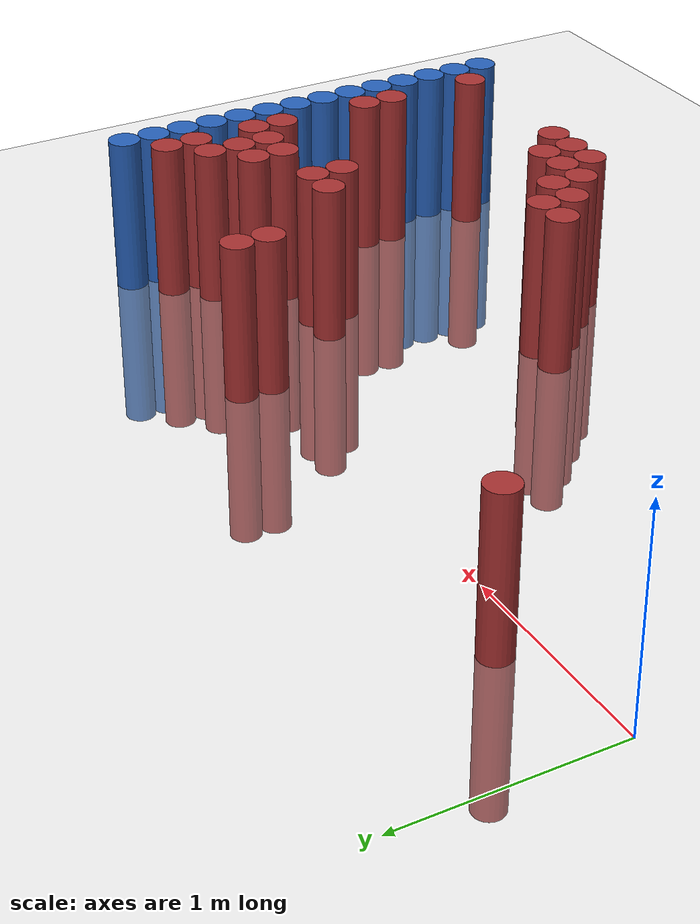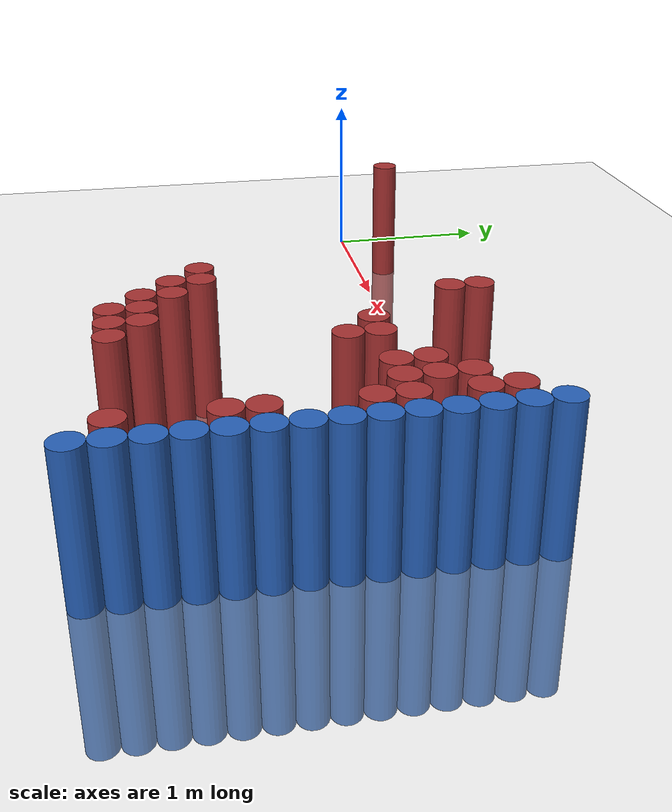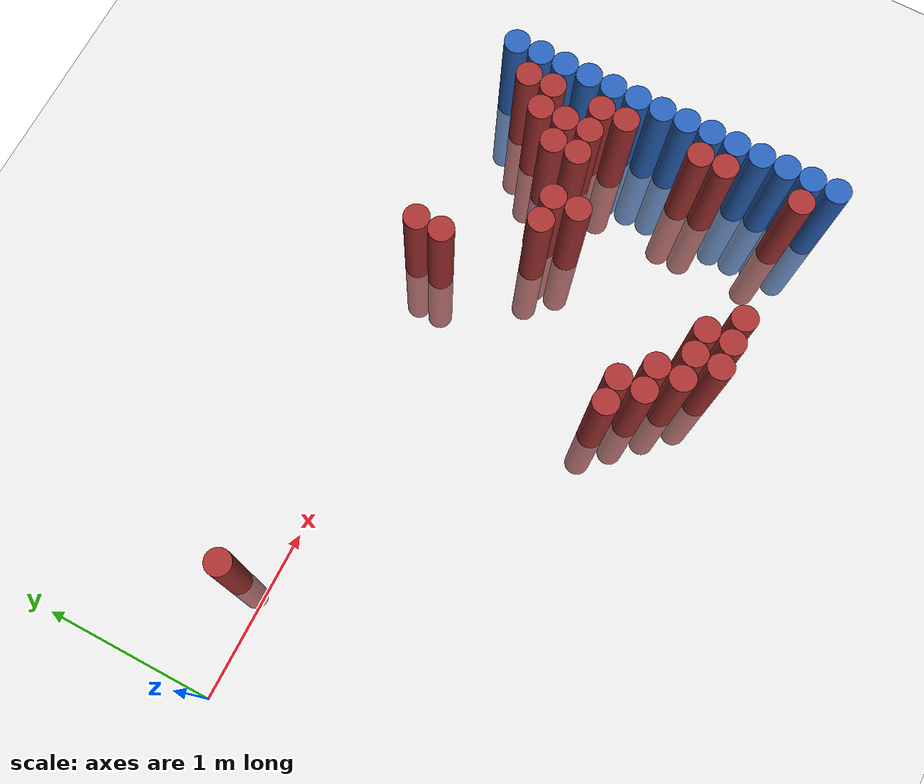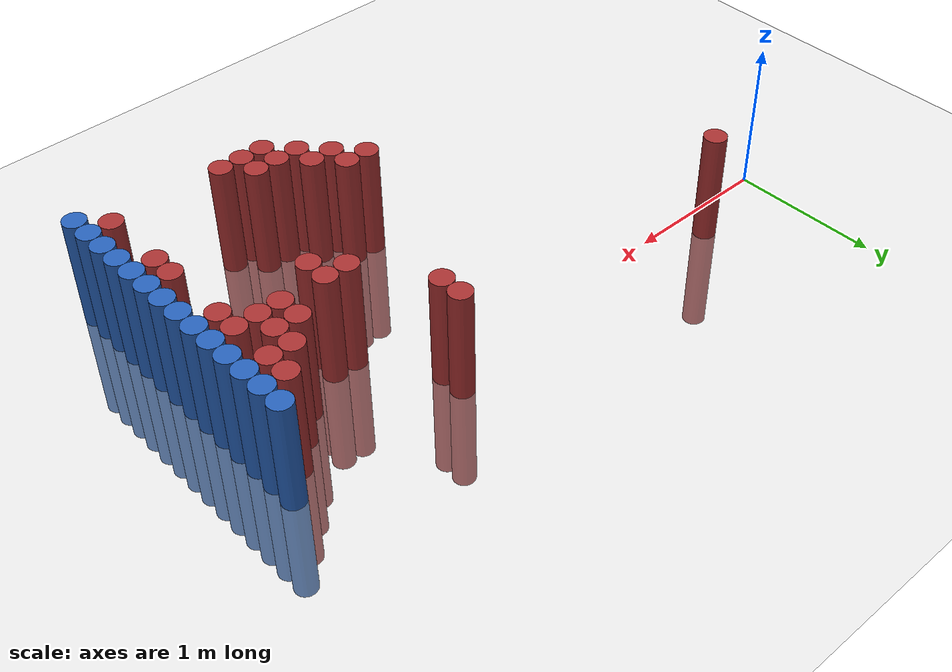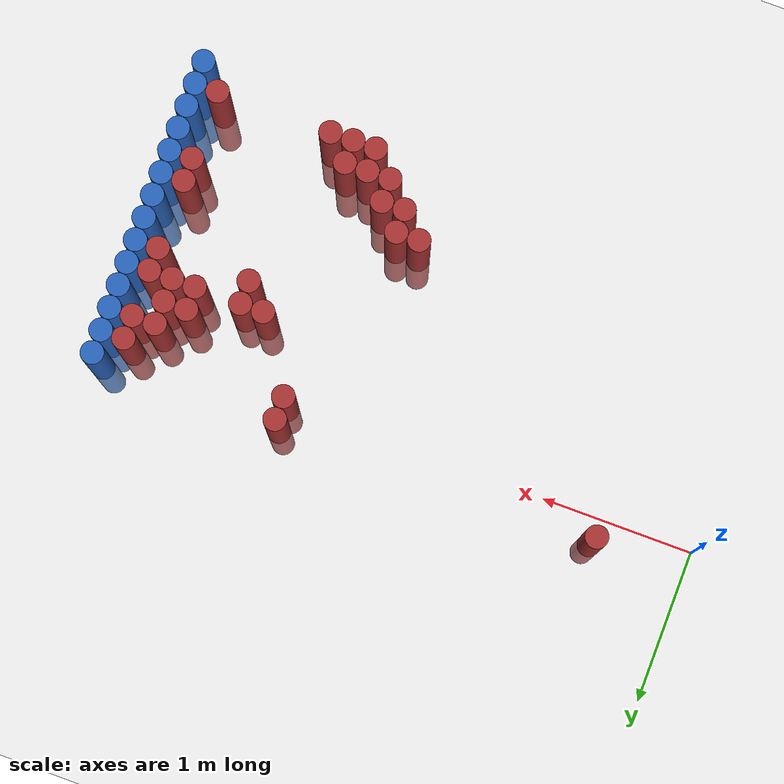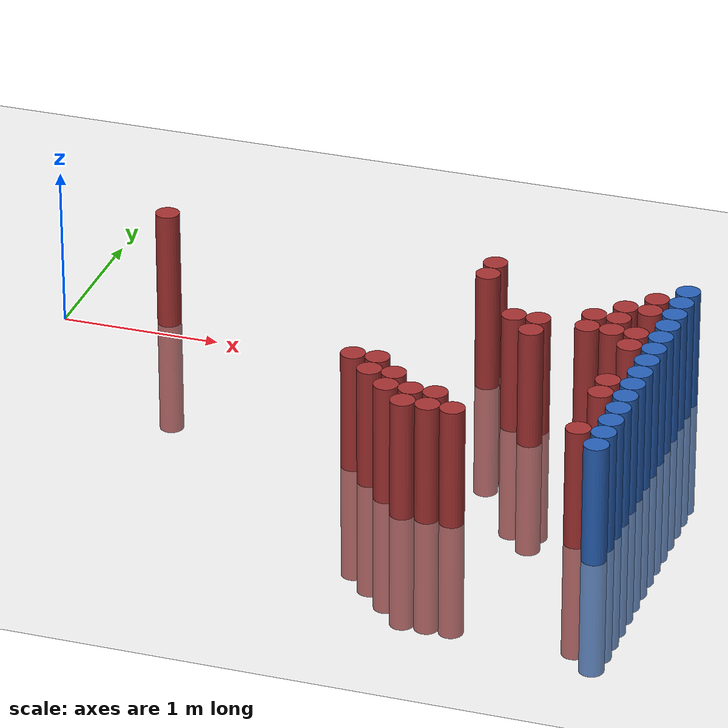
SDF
<sdf version="1.6">
 <world name="default">
  <model name="ground_plane">
   <static>1</static>
   <link name="link">
    <collision name="collision">
     <geometry><plane><normal>0 0 1</normal><size>100 100</size></plane></geometry>
     <surface><friction><ode><mu>100</mu><mu2>50</mu2></ode></friction></surface>
    </collision>
    <visual name="visual">
     <cast_shadows>0</cast_shadows>
     <geometry><plane><normal>0 0 1</normal><size>100 100</size></plane></geometry>
     <material>
      <script><uri>file://media/materials/scripts/gazebo.material</uri><name>Gazebo/Grey</name></script>
     </material>
    </visual>
   </link>
  </model>
  <model name="unit_cylinder_92">
   <static>1</static>
   <pose>3.925000 -1.625000 0.000000 0.000000 0.000000 0.000000</pose>
   <link name="link">
    <inertial>
     <mass>1</mass>
     <inertia><ixx>0.145833</ixx><ixy>0</ixy><ixz>0</ixz><iyy>0.145833</iyy><iyz>0</iyz><izz>0.125</izz></inertia>
    </inertial>
    <collision name="collision">
     <geometry><cylinder><radius>0.075000</radius><length>1.5</length></cylinder></geometry>
    </collision>
    <visual name="visual">
     <geometry><cylinder><radius>0.075000</radius><length>1.5</length></cylinder></geometry>
     <material>
      <ambient>0.152000 0.379000 0.720000 1</ambient>
      <diffuse>0.152000 0.379000 0.720000 1</diffuse>
     </material>
     <material>
      <script><name>Gazebo/Grey</name><uri>file://media/materials/scripts/gazebo.material</uri></script>
     </material>
    </visual>
   </link>
  </model>
  <model name="unit_cylinder_94">
   <static>1</static>
   <pose>3.925000 -1.475000 0.000000 0.000000 0.000000 0.000000</pose>
   <link name="link">
    <inertial>
     <mass>1</mass>
     <inertia><ixx>0.145833</ixx><ixy>0</ixy><ixz>0</ixz><iyy>0.145833</iyy><iyz>0</iyz><izz>0.125</izz></inertia>
    </inertial>
    <collision name="collision">
     <geometry><cylinder><radius>0.075000</radius><length>1.5</length></cylinder></geometry>
    </collision>
    <visual name="visual">
     <geometry><cylinder><radius>0.075000</radius><length>1.5</length></cylinder></geometry>
     <material>
      <ambient>0.152000 0.379000 0.720000 1</ambient>
      <diffuse>0.152000 0.379000 0.720000 1</diffuse>
     </material>
     <material>
      <script><name>Gazebo/Grey</name><uri>file://media/materials/scripts/gazebo.material</uri></script>
     </material>
    </visual>
   </link>
  </model>
  <model name="unit_cylinder_96">
   <static>1</static>
   <pose>3.925000 -1.325000 0.000000 0.000000 0.000000 0.000000</pose>
   <link name="link">
    <inertial>
     <mass>1</mass>
     <inertia><ixx>0.145833</ixx><ixy>0</ixy><ixz>0</ixz><iyy>0.145833</iyy><iyz>0</iyz><izz>0.125</izz></inertia>
    </inertial>
    <collision name="collision">
     <geometry><cylinder><radius>0.075000</radius><length>1.5</length></cylinder></geometry>
    </collision>
    <visual name="visual">
     <geometry><cylinder><radius>0.075000</radius><length>1.5</length></cylinder></geometry>
     <material>
      <ambient>0.152000 0.379000 0.720000 1</ambient>
      <diffuse>0.152000 0.379000 0.720000 1</diffuse>
     </material>
     <material>
      <script><name>Gazebo/Grey</name><uri>file://media/materials/scripts/gazebo.material</uri></script>
     </material>
    </visual>
   </link>
  </model>
  <model name="unit_cylinder_98">
   <static>1</static>
   <pose>3.925000 -1.175000 0.000000 0.000000 0.000000 0.000000</pose>
   <link name="link">
    <inertial>
     <mass>1</mass>
     <inertia><ixx>0.145833</ixx><ixy>0</ixy><ixz>0</ixz><iyy>0.145833</iyy><iyz>0</iyz><izz>0.125</izz></inertia>
    </inertial>
    <collision name="collision">
     <geometry><cylinder><radius>0.075000</radius><length>1.5</length></cylinder></geometry>
    </collision>
    <visual name="visual">
     <geometry><cylinder><radius>0.075000</radius><length>1.5</length></cylinder></geometry>
     <material>
      <ambient>0.152000 0.379000 0.720000 1</ambient>
      <diffuse>0.152000 0.379000 0.720000 1</diffuse>
     </material>
     <material>
      <script><name>Gazebo/Grey</name><uri>file://media/materials/scripts/gazebo.material</uri></script>
     </material>
    </visual>
   </link>
  </model>
  <model name="unit_cylinder_100">
   <static>1</static>
   <pose>3.925000 -1.025000 0.000000 0.000000 0.000000 0.000000</pose>
   <link name="link">
    <inertial>
     <mass>1</mass>
     <inertia><ixx>0.145833</ixx><ixy>0</ixy><ixz>0</ixz><iyy>0.145833</iyy><iyz>0</iyz><izz>0.125</izz></inertia>
    </inertial>
    <collision name="collision">
     <geometry><cylinder><radius>0.075000</radius><length>1.5</length></cylinder></geometry>
    </collision>
    <visual name="visual">
     <geometry><cylinder><radius>0.075000</radius><length>1.5</length></cylinder></geometry>
     <material>
      <ambient>0.152000 0.379000 0.720000 1</ambient>
      <diffuse>0.152000 0.379000 0.720000 1</diffuse>
     </material>
     <material>
      <script><name>Gazebo/Grey</name><uri>file://media/materials/scripts/gazebo.material</uri></script>
     </material>
    </visual>
   </link>
  </model>
  <model name="unit_cylinder_102">
   <static>1</static>
   <pose>3.925000 -0.875000 0.000000 0.000000 0.000000 0.000000</pose>
   <link name="link">
    <inertial>
     <mass>1</mass>
     <inertia><ixx>0.145833</ixx><ixy>0</ixy><ixz>0</ixz><iyy>0.145833</iyy><iyz>0</iyz><izz>0.125</izz></inertia>
    </inertial>
    <collision name="collision">
     <geometry><cylinder><radius>0.075000</radius><length>1.5</length></cylinder></geometry>
    </collision>
    <visual name="visual">
     <geometry><cylinder><radius>0.075000</radius><length>1.5</length></cylinder></geometry>
     <material>
      <ambient>0.152000 0.379000 0.720000 1</ambient>
      <diffuse>0.152000 0.379000 0.720000 1</diffuse>
     </material>
     <material>
      <script><name>Gazebo/Grey</name><uri>file://media/materials/scripts/gazebo.material</uri></script>
     </material>
    </visual>
   </link>
  </model>
  <model name="unit_cylinder_104">
   <static>1</static>
   <pose>3.925000 -0.725000 0.000000 0.000000 0.000000 0.000000</pose>
   <link name="link">
    <inertial>
     <mass>1</mass>
     <inertia><ixx>0.145833</ixx><ixy>0</ixy><ixz>0</ixz><iyy>0.145833</iyy><iyz>0</iyz><izz>0.125</izz></inertia>
    </inertial>
    <collision name="collision">
     <geometry><cylinder><radius>0.075000</radius><length>1.5</length></cylinder></geometry>
    </collision>
    <visual name="visual">
     <geometry><cylinder><radius>0.075000</radius><length>1.5</length></cylinder></geometry>
     <material>
      <ambient>0.152000 0.379000 0.720000 1</ambient>
      <diffuse>0.152000 0.379000 0.720000 1</diffuse>
     </material>
     <material>
      <script><name>Gazebo/Grey</name><uri>file://media/materials/scripts/gazebo.material</uri></script>
     </material>
    </visual>
   </link>
  </model>
  <model name="unit_cylinder_106">
   <static>1</static>
   <pose>3.925000 -0.575000 0.000000 0.000000 0.000000 0.000000</pose>
   <link name="link">
    <inertial>
     <mass>1</mass>
     <inertia><ixx>0.145833</ixx><ixy>0</ixy><ixz>0</ixz><iyy>0.145833</iyy><iyz>0</iyz><izz>0.125</izz></inertia>
    </inertial>
    <collision name="collision">
     <geometry><cylinder><radius>0.075000</radius><length>1.5</length></cylinder></geometry>
    </collision>
    <visual name="visual">
     <geometry><cylinder><radius>0.075000</radius><length>1.5</length></cylinder></geometry>
     <material>
      <ambient>0.152000 0.379000 0.720000 1</ambient>
      <diffuse>0.152000 0.379000 0.720000 1</diffuse>
     </material>
     <material>
      <script><name>Gazebo/Grey</name><uri>file://media/materials/scripts/gazebo.material</uri></script>
     </material>
    </visual>
   </link>
  </model>
  <model name="unit_cylinder_108">
   <static>1</static>
   <pose>3.925000 -0.425000 0.000000 0.000000 0.000000 0.000000</pose>
   <link name="link">
    <inertial>
     <mass>1</mass>
     <inertia><ixx>0.145833</ixx><ixy>0</ixy><ixz>0</ixz><iyy>0.145833</iyy><iyz>0</iyz><izz>0.125</izz></inertia>
    </inertial>
    <collision name="collision">
     <geometry><cylinder><radius>0.075000</radius><length>1.5</length></cylinder></geometry>
    </collision>
    <visual name="visual">
     <geometry><cylinder><radius>0.075000</radius><length>1.5</length></cylinder></geometry>
     <material>
      <ambient>0.152000 0.379000 0.720000 1</ambient>
      <diffuse>0.152000 0.379000 0.720000 1</diffuse>
     </material>
     <material>
      <script><name>Gazebo/Grey</name><uri>file://media/materials/scripts/gazebo.material</uri></script>
     </material>
    </visual>
   </link>
  </model>
  <model name="unit_cylinder_110">
   <static>1</static>
   <pose>3.925000 -0.275000 0.000000 0.000000 0.000000 0.000000</pose>
   <link name="link">
    <inertial>
     <mass>1</mass>
     <inertia><ixx>0.145833</ixx><ixy>0</ixy><ixz>0</ixz><iyy>0.145833</iyy><iyz>0</iyz><izz>0.125</izz></inertia>
    </inertial>
    <collision name="collision">
     <geometry><cylinder><radius>0.075000</radius><length>1.5</length></cylinder></geometry>
    </collision>
    <visual name="visual">
     <geometry><cylinder><radius>0.075000</radius><length>1.5</length></cylinder></geometry>
     <material>
      <ambient>0.152000 0.379000 0.720000 1</ambient>
      <diffuse>0.152000 0.379000 0.720000 1</diffuse>
     </material>
     <material>
      <script><name>Gazebo/Grey</name><uri>file://media/materials/scripts/gazebo.material</uri></script>
     </material>
    </visual>
   </link>
  </model>
  <model name="unit_cylinder_112">
   <static>1</static>
   <pose>3.925000 -0.125000 0.000000 0.000000 0.000000 0.000000</pose>
   <link name="link">
    <inertial>
     <mass>1</mass>
     <inertia><ixx>0.145833</ixx><ixy>0</ixy><ixz>0</ixz><iyy>0.145833</iyy><iyz>0</iyz><izz>0.125</izz></inertia>
    </inertial>
    <collision name="collision">
     <geometry><cylinder><radius>0.075000</radius><length>1.5</length></cylinder></geometry>
    </collision>
    <visual name="visual">
     <geometry><cylinder><radius>0.075000</radius><length>1.5</length></cylinder></geometry>
     <material>
      <ambient>0.152000 0.379000 0.720000 1</ambient>
      <diffuse>0.152000 0.379000 0.720000 1</diffuse>
     </material>
     <material>
      <script><name>Gazebo/Grey</name><uri>file://media/materials/scripts/gazebo.material</uri></script>
     </material>
    </visual>
   </link>
  </model>
  <model name="unit_cylinder_114">
   <static>1</static>
   <pose>3.925000 0.025000 0.000000 0.000000 0.000000 0.000000</pose>
   <link name="link">
    <inertial>
     <mass>1</mass>
     <inertia><ixx>0.145833</ixx><ixy>0</ixy><ixz>0</ixz><iyy>0.145833</iyy><iyz>0</iyz><izz>0.125</izz></inertia>
    </inertial>
    <collision name="collision">
     <geometry><cylinder><radius>0.075000</radius><length>1.5</length></cylinder></geometry>
    </collision>
    <visual name="visual">
     <geometry><cylinder><radius>0.075000</radius><length>1.5</length></cylinder></geometry>
     <material>
      <ambient>0.152000 0.379000 0.720000 1</ambient>
      <diffuse>0.152000 0.379000 0.720000 1</diffuse>
     </material>
     <material>
      <script><name>Gazebo/Grey</name><uri>file://media/materials/scripts/gazebo.material</uri></script>
     </material>
    </visual>
   </link>
  </model>
  <model name="unit_cylinder_116">
   <static>1</static>
   <pose>3.925000 0.175000 0.000000 0.000000 0.000000 0.000000</pose>
   <link name="link">
    <inertial>
     <mass>1</mass>
     <inertia><ixx>0.145833</ixx><ixy>0</ixy><ixz>0</ixz><iyy>0.145833</iyy><iyz>0</iyz><izz>0.125</izz></inertia>
    </inertial>
    <collision name="collision">
     <geometry><cylinder><radius>0.075000</radius><length>1.5</length></cylinder></geometry>
    </collision>
    <visual name="visual">
     <geometry><cylinder><radius>0.075000</radius><length>1.5</length></cylinder></geometry>
     <material>
      <ambient>0.152000 0.379000 0.720000 1</ambient>
      <diffuse>0.152000 0.379000 0.720000 1</diffuse>
     </material>
     <material>
      <script><name>Gazebo/Grey</name><uri>file://media/materials/scripts/gazebo.material</uri></script>
     </material>
    </visual>
   </link>
  </model>
  <model name="unit_cylinder_356">
   <static>1</static>
   <pose>0.625000 0.175000 0.000000 0.000000 0.000000 0.000000</pose>
   <link name="link">
    <inertial>
     <mass>1</mass>
     <inertia><ixx>0.145833</ixx><ixy>0</ixy><ixz>0</ixz><iyy>0.145833</iyy><iyz>0</iyz><izz>0.125</izz></inertia>
    </inertial>
    <collision name="collision">
     <geometry><cylinder><radius>0.075000</radius><length>1.5</length></cylinder></geometry>
    </collision>
    <visual name="visual">
     <geometry><cylinder><radius>0.075000</radius><length>1.5</length></cylinder></geometry>
     <material>
      <ambient>0.648000 0.192000 0.192000 1</ambient>
      <diffuse>0.648000 0.192000 0.192000 1</diffuse>
     </material>
     <material>
      <script><name>Gazebo/Grey</name><uri>file://media/materials/scripts/gazebo.material</uri></script>
     </material>
    </visual>
   </link>
  </model>
  <model name="unit_cylinder_372">
   <static>1</static>
   <pose>2.275000 -1.175000 0.000000 0.000000 0.000000 0.000000</pose>
   <link name="link">
    <inertial>
     <mass>1</mass>
     <inertia><ixx>0.145833</ixx><ixy>0</ixy><ixz>0</ixz><iyy>0.145833</iyy><iyz>0</iyz><izz>0.125</izz></inertia>
    </inertial>
    <collision name="collision">
     <geometry><cylinder><radius>0.075000</radius><length>1.5</length></cylinder></geometry>
    </collision>
    <visual name="visual">
     <geometry><cylinder><radius>0.075000</radius><length>1.5</length></cylinder></geometry>
     <material>
      <ambient>0.648000 0.192000 0.192000 1</ambient>
      <diffuse>0.648000 0.192000 0.192000 1</diffuse>
     </material>
     <material>
      <script><name>Gazebo/Grey</name><uri>file://media/materials/scripts/gazebo.material</uri></script>
     </material>
    </visual>
   </link>
  </model>
  <model name="unit_cylinder_375">
   <static>1</static>
   <pose>2.425000 -1.325000 0.000000 0.000000 0.000000 0.000000</pose>
   <link name="link">
    <inertial>
     <mass>1</mass>
     <inertia><ixx>0.145833</ixx><ixy>0</ixy><ixz>0</ixz><iyy>0.145833</iyy><iyz>0</iyz><izz>0.125</izz></inertia>
    </inertial>
    <collision name="collision">
     <geometry><cylinder><radius>0.075000</radius><length>1.5</length></cylinder></geometry>
    </collision>
    <visual name="visual">
     <geometry><cylinder><radius>0.075000</radius><length>1.5</length></cylinder></geometry>
     <material>
      <ambient>0.648000 0.192000 0.192000 1</ambient>
      <diffuse>0.648000 0.192000 0.192000 1</diffuse>
     </material>
     <material>
      <script><name>Gazebo/Grey</name><uri>file://media/materials/scripts/gazebo.material</uri></script>
     </material>
    </visual>
   </link>
  </model>
  <model name="unit_cylinder_376">
   <static>1</static>
   <pose>2.425000 -1.175000 0.000000 0.000000 0.000000 0.000000</pose>
   <link name="link">
    <inertial>
     <mass>1</mass>
     <inertia><ixx>0.145833</ixx><ixy>0</ixy><ixz>0</ixz><iyy>0.145833</iyy><iyz>0</iyz><izz>0.125</izz></inertia>
    </inertial>
    <collision name="collision">
     <geometry><cylinder><radius>0.075000</radius><length>1.5</length></cylinder></geometry>
    </collision>
    <visual name="visual">
     <geometry><cylinder><radius>0.075000</radius><length>1.5</length></cylinder></geometry>
     <material>
      <ambient>0.648000 0.192000 0.192000 1</ambient>
      <diffuse>0.648000 0.192000 0.192000 1</diffuse>
     </material>
     <material>
      <script><name>Gazebo/Grey</name><uri>file://media/materials/scripts/gazebo.material</uri></script>
     </material>
    </visual>
   </link>
  </model>
  <model name="unit_cylinder_378">
   <static>1</static>
   <pose>2.575000 -1.475000 0.000000 0.000000 0.000000 0.000000</pose>
   <link name="link">
    <inertial>
     <mass>1</mass>
     <inertia><ixx>0.145833</ixx><ixy>0</ixy><ixz>0</ixz><iyy>0.145833</iyy><iyz>0</iyz><izz>0.125</izz></inertia>
    </inertial>
    <collision name="collision">
     <geometry><cylinder><radius>0.075000</radius><length>1.5</length></cylinder></geometry>
    </collision>
    <visual name="visual">
     <geometry><cylinder><radius>0.075000</radius><length>1.5</length></cylinder></geometry>
     <material>
      <ambient>0.648000 0.192000 0.192000 1</ambient>
      <diffuse>0.648000 0.192000 0.192000 1</diffuse>
     </material>
     <material>
      <script><name>Gazebo/Grey</name><uri>file://media/materials/scripts/gazebo.material</uri></script>
     </material>
    </visual>
   </link>
  </model>
  <model name="unit_cylinder_379">
   <static>1</static>
   <pose>2.575000 -1.325000 0.000000 0.000000 0.000000 0.000000</pose>
   <link name="link">
    <inertial>
     <mass>1</mass>
     <inertia><ixx>0.145833</ixx><ixy>0</ixy><ixz>0</ixz><iyy>0.145833</iyy><iyz>0</iyz><izz>0.125</izz></inertia>
    </inertial>
    <collision name="collision">
     <geometry><cylinder><radius>0.075000</radius><length>1.5</length></cylinder></geometry>
    </collision>
    <visual name="visual">
     <geometry><cylinder><radius>0.075000</radius><length>1.5</length></cylinder></geometry>
     <material>
      <ambient>0.648000 0.192000 0.192000 1</ambient>
      <diffuse>0.648000 0.192000 0.192000 1</diffuse>
     </material>
     <material>
      <script><name>Gazebo/Grey</name><uri>file://media/materials/scripts/gazebo.material</uri></script>
     </material>
    </visual>
   </link>
  </model>
  <model name="unit_cylinder_383">
   <static>1</static>
   <pose>2.725000 -1.625000 0.000000 0.000000 0.000000 0.000000</pose>
   <link name="link">
    <inertial>
     <mass>1</mass>
     <inertia><ixx>0.145833</ixx><ixy>0</ixy><ixz>0</ixz><iyy>0.145833</iyy><iyz>0</iyz><izz>0.125</izz></inertia>
    </inertial>
    <collision name="collision">
     <geometry><cylinder><radius>0.075000</radius><length>1.5</length></cylinder></geometry>
    </collision>
    <visual name="visual">
     <geometry><cylinder><radius>0.075000</radius><length>1.5</length></cylinder></geometry>
     <material>
      <ambient>0.648000 0.192000 0.192000 1</ambient>
      <diffuse>0.648000 0.192000 0.192000 1</diffuse>
     </material>
     <material>
      <script><name>Gazebo/Grey</name><uri>file://media/materials/scripts/gazebo.material</uri></script>
     </material>
    </visual>
   </link>
  </model>
  <model name="unit_cylinder_384">
   <static>1</static>
   <pose>2.725000 -1.475000 0.000000 0.000000 0.000000 0.000000</pose>
   <link name="link">
    <inertial>
     <mass>1</mass>
     <inertia><ixx>0.145833</ixx><ixy>0</ixy><ixz>0</ixz><iyy>0.145833</iyy><iyz>0</iyz><izz>0.125</izz></inertia>
    </inertial>
    <collision name="collision">
     <geometry><cylinder><radius>0.075000</radius><length>1.5</length></cylinder></geometry>
    </collision>
    <visual name="visual">
     <geometry><cylinder><radius>0.075000</radius><length>1.5</length></cylinder></geometry>
     <material>
      <ambient>0.648000 0.192000 0.192000 1</ambient>
      <diffuse>0.648000 0.192000 0.192000 1</diffuse>
     </material>
     <material>
      <script><name>Gazebo/Grey</name><uri>file://media/materials/scripts/gazebo.material</uri></script>
     </material>
    </visual>
   </link>
  </model>
  <model name="unit_cylinder_385">
   <static>1</static>
   <pose>2.725000 0.025000 0.000000 0.000000 0.000000 0.000000</pose>
   <link name="link">
    <inertial>
     <mass>1</mass>
     <inertia><ixx>0.145833</ixx><ixy>0</ixy><ixz>0</ixz><iyy>0.145833</iyy><iyz>0</iyz><izz>0.125</izz></inertia>
    </inertial>
    <collision name="collision">
     <geometry><cylinder><radius>0.075000</radius><length>1.5</length></cylinder></geometry>
    </collision>
    <visual name="visual">
     <geometry><cylinder><radius>0.075000</radius><length>1.5</length></cylinder></geometry>
     <material>
      <ambient>0.648000 0.192000 0.192000 1</ambient>
      <diffuse>0.648000 0.192000 0.192000 1</diffuse>
     </material>
     <material>
      <script><name>Gazebo/Grey</name><uri>file://media/materials/scripts/gazebo.material</uri></script>
     </material>
    </visual>
   </link>
  </model>
  <model name="unit_cylinder_386">
   <static>1</static>
   <pose>2.725000 0.175000 0.000000 0.000000 0.000000 0.000000</pose>
   <link name="link">
    <inertial>
     <mass>1</mass>
     <inertia><ixx>0.145833</ixx><ixy>0</ixy><ixz>0</ixz><iyy>0.145833</iyy><iyz>0</iyz><izz>0.125</izz></inertia>
    </inertial>
    <collision name="collision">
     <geometry><cylinder><radius>0.075000</radius><length>1.5</length></cylinder></geometry>
    </collision>
    <visual name="visual">
     <geometry><cylinder><radius>0.075000</radius><length>1.5</length></cylinder></geometry>
     <material>
      <ambient>0.648000 0.192000 0.192000 1</ambient>
      <diffuse>0.648000 0.192000 0.192000 1</diffuse>
     </material>
     <material>
      <script><name>Gazebo/Grey</name><uri>file://media/materials/scripts/gazebo.material</uri></script>
     </material>
    </visual>
   </link>
  </model>
  <model name="unit_cylinder_389">
   <static>1</static>
   <pose>2.875000 -1.625000 0.000000 0.000000 0.000000 0.000000</pose>
   <link name="link">
    <inertial>
     <mass>1</mass>
     <inertia><ixx>0.145833</ixx><ixy>0</ixy><ixz>0</ixz><iyy>0.145833</iyy><iyz>0</iyz><izz>0.125</izz></inertia>
    </inertial>
    <collision name="collision">
     <geometry><cylinder><radius>0.075000</radius><length>1.5</length></cylinder></geometry>
    </collision>
    <visual name="visual">
     <geometry><cylinder><radius>0.075000</radius><length>1.5</length></cylinder></geometry>
     <material>
      <ambient>0.648000 0.192000 0.192000 1</ambient>
      <diffuse>0.648000 0.192000 0.192000 1</diffuse>
     </material>
     <material>
      <script><name>Gazebo/Grey</name><uri>file://media/materials/scripts/gazebo.material</uri></script>
     </material>
    </visual>
   </link>
  </model>
  <model name="unit_cylinder_390">
   <static>1</static>
   <pose>2.875000 -1.475000 0.000000 0.000000 0.000000 0.000000</pose>
   <link name="link">
    <inertial>
     <mass>1</mass>
     <inertia><ixx>0.145833</ixx><ixy>0</ixy><ixz>0</ixz><iyy>0.145833</iyy><iyz>0</iyz><izz>0.125</izz></inertia>
    </inertial>
    <collision name="collision">
     <geometry><cylinder><radius>0.075000</radius><length>1.5</length></cylinder></geometry>
    </collision>
    <visual name="visual">
     <geometry><cylinder><radius>0.075000</radius><length>1.5</length></cylinder></geometry>
     <material>
      <ambient>0.648000 0.192000 0.192000 1</ambient>
      <diffuse>0.648000 0.192000 0.192000 1</diffuse>
     </material>
     <material>
      <script><name>Gazebo/Grey</name><uri>file://media/materials/scripts/gazebo.material</uri></script>
     </material>
    </visual>
   </link>
  </model>
  <model name="unit_cylinder_397">
   <static>1</static>
   <pose>3.025000 -1.625000 0.000000 0.000000 0.000000 0.000000</pose>
   <link name="link">
    <inertial>
     <mass>1</mass>
     <inertia><ixx>0.145833</ixx><ixy>0</ixy><ixz>0</ixz><iyy>0.145833</iyy><iyz>0</iyz><izz>0.125</izz></inertia>
    </inertial>
    <collision name="collision">
     <geometry><cylinder><radius>0.075000</radius><length>1.5</length></cylinder></geometry>
    </collision>
    <visual name="visual">
     <geometry><cylinder><radius>0.075000</radius><length>1.5</length></cylinder></geometry>
     <material>
      <ambient>0.648000 0.192000 0.192000 1</ambient>
      <diffuse>0.648000 0.192000 0.192000 1</diffuse>
     </material>
     <material>
      <script><name>Gazebo/Grey</name><uri>file://media/materials/scripts/gazebo.material</uri></script>
     </material>
    </visual>
   </link>
  </model>
  <model name="unit_cylinder_398">
   <static>1</static>
   <pose>3.025000 -0.425000 0.000000 0.000000 0.000000 0.000000</pose>
   <link name="link">
    <inertial>
     <mass>1</mass>
     <inertia><ixx>0.145833</ixx><ixy>0</ixy><ixz>0</ixz><iyy>0.145833</iyy><iyz>0</iyz><izz>0.125</izz></inertia>
    </inertial>
    <collision name="collision">
     <geometry><cylinder><radius>0.075000</radius><length>1.5</length></cylinder></geometry>
    </collision>
    <visual name="visual">
     <geometry><cylinder><radius>0.075000</radius><length>1.5</length></cylinder></geometry>
     <material>
      <ambient>0.648000 0.192000 0.192000 1</ambient>
      <diffuse>0.648000 0.192000 0.192000 1</diffuse>
     </material>
     <material>
      <script><name>Gazebo/Grey</name><uri>file://media/materials/scripts/gazebo.material</uri></script>
     </material>
    </visual>
   </link>
  </model>
  <model name="unit_cylinder_401">
   <static>1</static>
   <pose>3.175000 -0.575000 0.000000 0.000000 0.000000 0.000000</pose>
   <link name="link">
    <inertial>
     <mass>1</mass>
     <inertia><ixx>0.145833</ixx><ixy>0</ixy><ixz>0</ixz><iyy>0.145833</iyy><iyz>0</iyz><izz>0.125</izz></inertia>
    </inertial>
    <collision name="collision">
     <geometry><cylinder><radius>0.075000</radius><length>1.5</length></cylinder></geometry>
    </collision>
    <visual name="visual">
     <geometry><cylinder><radius>0.075000</radius><length>1.5</length></cylinder></geometry>
     <material>
      <ambient>0.648000 0.192000 0.192000 1</ambient>
      <diffuse>0.648000 0.192000 0.192000 1</diffuse>
     </material>
     <material>
      <script><name>Gazebo/Grey</name><uri>file://media/materials/scripts/gazebo.material</uri></script>
     </material>
    </visual>
   </link>
  </model>
  <model name="unit_cylinder_402">
   <static>1</static>
   <pose>3.175000 -0.425000 0.000000 0.000000 0.000000 0.000000</pose>
   <link name="link">
    <inertial>
     <mass>1</mass>
     <inertia><ixx>0.145833</ixx><ixy>0</ixy><ixz>0</ixz><iyy>0.145833</iyy><iyz>0</iyz><izz>0.125</izz></inertia>
    </inertial>
    <collision name="collision">
     <geometry><cylinder><radius>0.075000</radius><length>1.5</length></cylinder></geometry>
    </collision>
    <visual name="visual">
     <geometry><cylinder><radius>0.075000</radius><length>1.5</length></cylinder></geometry>
     <material>
      <ambient>0.648000 0.192000 0.192000 1</ambient>
      <diffuse>0.648000 0.192000 0.192000 1</diffuse>
     </material>
     <material>
      <script><name>Gazebo/Grey</name><uri>file://media/materials/scripts/gazebo.material</uri></script>
     </material>
    </visual>
   </link>
  </model>
  <model name="unit_cylinder_404">
   <static>1</static>
   <pose>3.475000 -0.425000 0.000000 0.000000 0.000000 0.000000</pose>
   <link name="link">
    <inertial>
     <mass>1</mass>
     <inertia><ixx>0.145833</ixx><ixy>0</ixy><ixz>0</ixz><iyy>0.145833</iyy><iyz>0</iyz><izz>0.125</izz></inertia>
    </inertial>
    <collision name="collision">
     <geometry><cylinder><radius>0.075000</radius><length>1.5</length></cylinder></geometry>
    </collision>
    <visual name="visual">
     <geometry><cylinder><radius>0.075000</radius><length>1.5</length></cylinder></geometry>
     <material>
      <ambient>0.648000 0.192000 0.192000 1</ambient>
      <diffuse>0.648000 0.192000 0.192000 1</diffuse>
     </material>
     <material>
      <script><name>Gazebo/Grey</name><uri>file://media/materials/scripts/gazebo.material</uri></script>
     </material>
    </visual>
   </link>
  </model>
  <model name="unit_cylinder_405">
   <static>1</static>
   <pose>3.475000 -0.275000 0.000000 0.000000 0.000000 0.000000</pose>
   <link name="link">
    <inertial>
     <mass>1</mass>
     <inertia><ixx>0.145833</ixx><ixy>0</ixy><ixz>0</ixz><iyy>0.145833</iyy><iyz>0</iyz><izz>0.125</izz></inertia>
    </inertial>
    <collision name="collision">
     <geometry><cylinder><radius>0.075000</radius><length>1.5</length></cylinder></geometry>
    </collision>
    <visual name="visual">
     <geometry><cylinder><radius>0.075000</radius><length>1.5</length></cylinder></geometry>
     <material>
      <ambient>0.648000 0.192000 0.192000 1</ambient>
      <diffuse>0.648000 0.192000 0.192000 1</diffuse>
     </material>
     <material>
      <script><name>Gazebo/Grey</name><uri>file://media/materials/scripts/gazebo.material</uri></script>
     </material>
    </visual>
   </link>
  </model>
  <model name="unit_cylinder_408">
   <static>1</static>
   <pose>3.625000 -0.425000 0.000000 0.000000 0.000000 0.000000</pose>
   <link name="link">
    <inertial>
     <mass>1</mass>
     <inertia><ixx>0.145833</ixx><ixy>0</ixy><ixz>0</ixz><iyy>0.145833</iyy><iyz>0</iyz><izz>0.125</izz></inertia>
    </inertial>
    <collision name="collision">
     <geometry><cylinder><radius>0.075000</radius><length>1.5</length></cylinder></geometry>
    </collision>
    <visual name="visual">
     <geometry><cylinder><radius>0.075000</radius><length>1.5</length></cylinder></geometry>
     <material>
      <ambient>0.648000 0.192000 0.192000 1</ambient>
      <diffuse>0.648000 0.192000 0.192000 1</diffuse>
     </material>
     <material>
      <script><name>Gazebo/Grey</name><uri>file://media/materials/scripts/gazebo.material</uri></script>
     </material>
    </visual>
   </link>
  </model>
  <model name="unit_cylinder_409">
   <static>1</static>
   <pose>3.625000 -0.275000 0.000000 0.000000 0.000000 0.000000</pose>
   <link name="link">
    <inertial>
     <mass>1</mass>
     <inertia><ixx>0.145833</ixx><ixy>0</ixy><ixz>0</ixz><iyy>0.145833</iyy><iyz>0</iyz><izz>0.125</izz></inertia>
    </inertial>
    <collision name="collision">
     <geometry><cylinder><radius>0.075000</radius><length>1.5</length></cylinder></geometry>
    </collision>
    <visual name="visual">
     <geometry><cylinder><radius>0.075000</radius><length>1.5</length></cylinder></geometry>
     <material>
      <ambient>0.648000 0.192000 0.192000 1</ambient>
      <diffuse>0.648000 0.192000 0.192000 1</diffuse>
     </material>
     <material>
      <script><name>Gazebo/Grey</name><uri>file://media/materials/scripts/gazebo.material</uri></script>
     </material>
    </visual>
   </link>
  </model>
  <model name="unit_cylinder_410">
   <static>1</static>
   <pose>3.625000 -0.125000 0.000000 0.000000 0.000000 0.000000</pose>
   <link name="link">
    <inertial>
     <mass>1</mass>
     <inertia><ixx>0.145833</ixx><ixy>0</ixy><ixz>0</ixz><iyy>0.145833</iyy><iyz>0</iyz><izz>0.125</izz></inertia>
    </inertial>
    <collision name="collision">
     <geometry><cylinder><radius>0.075000</radius><length>1.5</length></cylinder></geometry>
    </collision>
    <visual name="visual">
     <geometry><cylinder><radius>0.075000</radius><length>1.5</length></cylinder></geometry>
     <material>
      <ambient>0.648000 0.192000 0.192000 1</ambient>
      <diffuse>0.648000 0.192000 0.192000 1</diffuse>
     </material>
     <material>
      <script><name>Gazebo/Grey</name><uri>file://media/materials/scripts/gazebo.material</uri></script>
     </material>
    </visual>
   </link>
  </model>
  <model name="unit_cylinder_415">
   <static>1</static>
   <pose>3.775000 -1.625000 0.000000 0.000000 0.000000 0.000000</pose>
   <link name="link">
    <inertial>
     <mass>1</mass>
     <inertia><ixx>0.145833</ixx><ixy>0</ixy><ixz>0</ixz><iyy>0.145833</iyy><iyz>0</iyz><izz>0.125</izz></inertia>
    </inertial>
    <collision name="collision">
     <geometry><cylinder><radius>0.075000</radius><length>1.5</length></cylinder></geometry>
    </collision>
    <visual name="visual">
     <geometry><cylinder><radius>0.075000</radius><length>1.5</length></cylinder></geometry>
     <material>
      <ambient>0.648000 0.192000 0.192000 1</ambient>
      <diffuse>0.648000 0.192000 0.192000 1</diffuse>
     </material>
     <material>
      <script><name>Gazebo/Grey</name><uri>file://media/materials/scripts/gazebo.material</uri></script>
     </material>
    </visual>
   </link>
  </model>
  <model name="unit_cylinder_416">
   <static>1</static>
   <pose>3.775000 -1.175000 0.000000 0.000000 0.000000 0.000000</pose>
   <link name="link">
    <inertial>
     <mass>1</mass>
     <inertia><ixx>0.145833</ixx><ixy>0</ixy><ixz>0</ixz><iyy>0.145833</iyy><iyz>0</iyz><izz>0.125</izz></inertia>
    </inertial>
    <collision name="collision">
     <geometry><cylinder><radius>0.075000</radius><length>1.5</length></cylinder></geometry>
    </collision>
    <visual name="visual">
     <geometry><cylinder><radius>0.075000</radius><length>1.5</length></cylinder></geometry>
     <material>
      <ambient>0.648000 0.192000 0.192000 1</ambient>
      <diffuse>0.648000 0.192000 0.192000 1</diffuse>
     </material>
     <material>
      <script><name>Gazebo/Grey</name><uri>file://media/materials/scripts/gazebo.material</uri></script>
     </material>
    </visual>
   </link>
  </model>
  <model name="unit_cylinder_417">
   <static>1</static>
   <pose>3.775000 -1.025000 0.000000 0.000000 0.000000 0.000000</pose>
   <link name="link">
    <inertial>
     <mass>1</mass>
     <inertia><ixx>0.145833</ixx><ixy>0</ixy><ixz>0</ixz><iyy>0.145833</iyy><iyz>0</iyz><izz>0.125</izz></inertia>
    </inertial>
    <collision name="collision">
     <geometry><cylinder><radius>0.075000</radius><length>1.5</length></cylinder></geometry>
    </collision>
    <visual name="visual">
     <geometry><cylinder><radius>0.075000</radius><length>1.5</length></cylinder></geometry>
     <material>
      <ambient>0.648000 0.192000 0.192000 1</ambient>
      <diffuse>0.648000 0.192000 0.192000 1</diffuse>
     </material>
     <material>
      <script><name>Gazebo/Grey</name><uri>file://media/materials/scripts/gazebo.material</uri></script>
     </material>
    </visual>
   </link>
  </model>
  <model name="unit_cylinder_418">
   <static>1</static>
   <pose>3.775000 -0.575000 0.000000 0.000000 0.000000 0.000000</pose>
   <link name="link">
    <inertial>
     <mass>1</mass>
     <inertia><ixx>0.145833</ixx><ixy>0</ixy><ixz>0</ixz><iyy>0.145833</iyy><iyz>0</iyz><izz>0.125</izz></inertia>
    </inertial>
    <collision name="collision">
     <geometry><cylinder><radius>0.075000</radius><length>1.5</length></cylinder></geometry>
    </collision>
    <visual name="visual">
     <geometry><cylinder><radius>0.075000</radius><length>1.5</length></cylinder></geometry>
     <material>
      <ambient>0.648000 0.192000 0.192000 1</ambient>
      <diffuse>0.648000 0.192000 0.192000 1</diffuse>
     </material>
     <material>
      <script><name>Gazebo/Grey</name><uri>file://media/materials/scripts/gazebo.material</uri></script>
     </material>
    </visual>
   </link>
  </model>
  <model name="unit_cylinder_419">
   <static>1</static>
   <pose>3.775000 -0.425000 0.000000 0.000000 0.000000 0.000000</pose>
   <link name="link">
    <inertial>
     <mass>1</mass>
     <inertia><ixx>0.145833</ixx><ixy>0</ixy><ixz>0</ixz><iyy>0.145833</iyy><iyz>0</iyz><izz>0.125</izz></inertia>
    </inertial>
    <collision name="collision">
     <geometry><cylinder><radius>0.075000</radius><length>1.5</length></cylinder></geometry>
    </collision>
    <visual name="visual">
     <geometry><cylinder><radius>0.075000</radius><length>1.5</length></cylinder></geometry>
     <material>
      <ambient>0.648000 0.192000 0.192000 1</ambient>
      <diffuse>0.648000 0.192000 0.192000 1</diffuse>
     </material>
     <material>
      <script><name>Gazebo/Grey</name><uri>file://media/materials/scripts/gazebo.material</uri></script>
     </material>
    </visual>
   </link>
  </model>
  <model name="unit_cylinder_420">
   <static>1</static>
   <pose>3.775000 -0.125000 0.000000 0.000000 0.000000 0.000000</pose>
   <link name="link">
    <inertial>
     <mass>1</mass>
     <inertia><ixx>0.145833</ixx><ixy>0</ixy><ixz>0</ixz><iyy>0.145833</iyy><iyz>0</iyz><izz>0.125</izz></inertia>
    </inertial>
    <collision name="collision">
     <geometry><cylinder><radius>0.075000</radius><length>1.5</length></cylinder></geometry>
    </collision>
    <visual name="visual">
     <geometry><cylinder><radius>0.075000</radius><length>1.5</length></cylinder></geometry>
     <material>
      <ambient>0.648000 0.192000 0.192000 1</ambient>
      <diffuse>0.648000 0.192000 0.192000 1</diffuse>
     </material>
     <material>
      <script><name>Gazebo/Grey</name><uri>file://media/materials/scripts/gazebo.material</uri></script>
     </material>
    </visual>
   </link>
  </model>
  <model name="unit_cylinder_421">
   <static>1</static>
   <pose>3.775000 0.025000 0.000000 0.000000 0.000000 0.000000</pose>
   <link name="link">
    <inertial>
     <mass>1</mass>
     <inertia><ixx>0.145833</ixx><ixy>0</ixy><ixz>0</ixz><iyy>0.145833</iyy><iyz>0</iyz><izz>0.125</izz></inertia>
    </inertial>
    <collision name="collision">
     <geometry><cylinder><radius>0.075000</radius><length>1.5</length></cylinder></geometry>
    </collision>
    <visual name="visual">
     <geometry><cylinder><radius>0.075000</radius><length>1.5</length></cylinder></geometry>
     <material>
      <ambient>0.648000 0.192000 0.192000 1</ambient>
      <diffuse>0.648000 0.192000 0.192000 1</diffuse>
     </material>
     <material>
      <script><name>Gazebo/Grey</name><uri>file://media/materials/scripts/gazebo.material</uri></script>
     </material>
    </visual>
   </link>
  </model>
  <model name="unit_cylinder_436">
   <static>1</static>
   <pose>3.925000 -1.775000 0.000000 0.000000 0.000000 0.000000</pose>
   <link name="link">
    <inertial>
     <mass>1</mass>
     <inertia><ixx>0.145833</ixx><ixy>0</ixy><ixz>0</ixz><iyy>0.145833</iyy><iyz>0</iyz><izz>0.125</izz></inertia>
    </inertial>
    <collision name="collision">
     <geometry><cylinder><radius>0.075000</radius><length>1.5</length></cylinder></geometry>
    </collision>
    <visual name="visual">
     <geometry><cylinder><radius>0.075000</radius><length>1.5</length></cylinder></geometry>
     <material>
      <ambient>0.152000 0.379000 0.720000 1</ambient>
      <diffuse>0.152000 0.379000 0.720000 1</diffuse>
     </material>
     <material>
      <script><name>Gazebo/Grey</name><uri>file://media/materials/scripts/gazebo.material</uri></script>
     </material>
    </visual>
   </link>
  </model>
  <model name="unit_cylinder_437">
   <static>1</static>
   <pose>3.925000 -1.625000 0.000000 0.000000 0.000000 0.000000</pose>
   <link name="link">
    <inertial>
     <mass>1</mass>
     <inertia><ixx>0.145833</ixx><ixy>0</ixy><ixz>0</ixz><iyy>0.145833</iyy><iyz>0</iyz><izz>0.125</izz></inertia>
    </inertial>
    <collision name="collision">
     <geometry><cylinder><radius>0.075000</radius><length>1.5</length></cylinder></geometry>
    </collision>
    <visual name="visual">
     <geometry><cylinder><radius>0.075000</radius><length>1.5</length></cylinder></geometry>
     <material>
      <ambient>0.152000 0.379000 0.720000 1</ambient>
      <diffuse>0.152000 0.379000 0.720000 1</diffuse>
     </material>
     <material>
      <script><name>Gazebo/Grey</name><uri>file://media/materials/scripts/gazebo.material</uri></script>
     </material>
    </visual>
   </link>
  </model>
  <model name="unit_cylinder_438">
   <static>1</static>
   <pose>3.925000 -1.475000 0.000000 0.000000 0.000000 0.000000</pose>
   <link name="link">
    <inertial>
     <mass>1</mass>
     <inertia><ixx>0.145833</ixx><ixy>0</ixy><ixz>0</ixz><iyy>0.145833</iyy><iyz>0</iyz><izz>0.125</izz></inertia>
    </inertial>
    <collision name="collision">
     <geometry><cylinder><radius>0.075000</radius><length>1.5</length></cylinder></geometry>
    </collision>
    <visual name="visual">
     <geometry><cylinder><radius>0.075000</radius><length>1.5</length></cylinder></geometry>
     <material>
      <ambient>0.152000 0.379000 0.720000 1</ambient>
      <diffuse>0.152000 0.379000 0.720000 1</diffuse>
     </material>
     <material>
      <script><name>Gazebo/Grey</name><uri>file://media/materials/scripts/gazebo.material</uri></script>
     </material>
    </visual>
   </link>
  </model>
  <model name="unit_cylinder_439">
   <static>1</static>
   <pose>3.925000 -1.325000 0.000000 0.000000 0.000000 0.000000</pose>
   <link name="link">
    <inertial>
     <mass>1</mass>
     <inertia><ixx>0.145833</ixx><ixy>0</ixy><ixz>0</ixz><iyy>0.145833</iyy><iyz>0</iyz><izz>0.125</izz></inertia>
    </inertial>
    <collision name="collision">
     <geometry><cylinder><radius>0.075000</radius><length>1.5</length></cylinder></geometry>
    </collision>
    <visual name="visual">
     <geometry><cylinder><radius>0.075000</radius><length>1.5</length></cylinder></geometry>
     <material>
      <ambient>0.152000 0.379000 0.720000 1</ambient>
      <diffuse>0.152000 0.379000 0.720000 1</diffuse>
     </material>
     <material>
      <script><name>Gazebo/Grey</name><uri>file://media/materials/scripts/gazebo.material</uri></script>
     </material>
    </visual>
   </link>
  </model>
  <model name="unit_cylinder_440">
   <static>1</static>
   <pose>3.925000 -1.175000 0.000000 0.000000 0.000000 0.000000</pose>
   <link name="link">
    <inertial>
     <mass>1</mass>
     <inertia><ixx>0.145833</ixx><ixy>0</ixy><ixz>0</ixz><iyy>0.145833</iyy><iyz>0</iyz><izz>0.125</izz></inertia>
    </inertial>
    <collision name="collision">
     <geometry><cylinder><radius>0.075000</radius><length>1.5</length></cylinder></geometry>
    </collision>
    <visual name="visual">
     <geometry><cylinder><radius>0.075000</radius><length>1.5</length></cylinder></geometry>
     <material>
      <ambient>0.152000 0.379000 0.720000 1</ambient>
      <diffuse>0.152000 0.379000 0.720000 1</diffuse>
     </material>
     <material>
      <script><name>Gazebo/Grey</name><uri>file://media/materials/scripts/gazebo.material</uri></script>
     </material>
    </visual>
   </link>
  </model>
  <model name="unit_cylinder_441">
   <static>1</static>
   <pose>3.925000 -1.025000 0.000000 0.000000 0.000000 0.000000</pose>
   <link name="link">
    <inertial>
     <mass>1</mass>
     <inertia><ixx>0.145833</ixx><ixy>0</ixy><ixz>0</ixz><iyy>0.145833</iyy><iyz>0</iyz><izz>0.125</izz></inertia>
    </inertial>
    <collision name="collision">
     <geometry><cylinder><radius>0.075000</radius><length>1.5</length></cylinder></geometry>
    </collision>
    <visual name="visual">
     <geometry><cylinder><radius>0.075000</radius><length>1.5</length></cylinder></geometry>
     <material>
      <ambient>0.152000 0.379000 0.720000 1</ambient>
      <diffuse>0.152000 0.379000 0.720000 1</diffuse>
     </material>
     <material>
      <script><name>Gazebo/Grey</name><uri>file://media/materials/scripts/gazebo.material</uri></script>
     </material>
    </visual>
   </link>
  </model>
  <model name="unit_cylinder_442">
   <static>1</static>
   <pose>3.925000 -0.875000 0.000000 0.000000 0.000000 0.000000</pose>
   <link name="link">
    <inertial>
     <mass>1</mass>
     <inertia><ixx>0.145833</ixx><ixy>0</ixy><ixz>0</ixz><iyy>0.145833</iyy><iyz>0</iyz><izz>0.125</izz></inertia>
    </inertial>
    <collision name="collision">
     <geometry><cylinder><radius>0.075000</radius><length>1.5</length></cylinder></geometry>
    </collision>
    <visual name="visual">
     <geometry><cylinder><radius>0.075000</radius><length>1.5</length></cylinder></geometry>
     <material>
      <ambient>0.152000 0.379000 0.720000 1</ambient>
      <diffuse>0.152000 0.379000 0.720000 1</diffuse>
     </material>
     <material>
      <script><name>Gazebo/Grey</name><uri>file://media/materials/scripts/gazebo.material</uri></script>
     </material>
    </visual>
   </link>
  </model>
  <model name="unit_cylinder_443">
   <static>1</static>
   <pose>3.925000 -0.725000 0.000000 0.000000 0.000000 0.000000</pose>
   <link name="link">
    <inertial>
     <mass>1</mass>
     <inertia><ixx>0.145833</ixx><ixy>0</ixy><ixz>0</ixz><iyy>0.145833</iyy><iyz>0</iyz><izz>0.125</izz></inertia>
    </inertial>
    <collision name="collision">
     <geometry><cylinder><radius>0.075000</radius><length>1.5</length></cylinder></geometry>
    </collision>
    <visual name="visual">
     <geometry><cylinder><radius>0.075000</radius><length>1.5</length></cylinder></geometry>
     <material>
      <ambient>0.152000 0.379000 0.720000 1</ambient>
      <diffuse>0.152000 0.379000 0.720000 1</diffuse>
     </material>
     <material>
      <script><name>Gazebo/Grey</name><uri>file://media/materials/scripts/gazebo.material</uri></script>
     </material>
    </visual>
   </link>
  </model>
  <model name="unit_cylinder_444">
   <static>1</static>
   <pose>3.925000 -0.575000 0.000000 0.000000 0.000000 0.000000</pose>
   <link name="link">
    <inertial>
     <mass>1</mass>
     <inertia><ixx>0.145833</ixx><ixy>0</ixy><ixz>0</ixz><iyy>0.145833</iyy><iyz>0</iyz><izz>0.125</izz></inertia>
    </inertial>
    <collision name="collision">
     <geometry><cylinder><radius>0.075000</radius><length>1.5</length></cylinder></geometry>
    </collision>
    <visual name="visual">
     <geometry><cylinder><radius>0.075000</radius><length>1.5</length></cylinder></geometry>
     <material>
      <ambient>0.152000 0.379000 0.720000 1</ambient>
      <diffuse>0.152000 0.379000 0.720000 1</diffuse>
     </material>
     <material>
      <script><name>Gazebo/Grey</name><uri>file://media/materials/scripts/gazebo.material</uri></script>
     </material>
    </visual>
   </link>
  </model>
  <model name="unit_cylinder_445">
   <static>1</static>
   <pose>3.925000 -0.425000 0.000000 0.000000 0.000000 0.000000</pose>
   <link name="link">
    <inertial>
     <mass>1</mass>
     <inertia><ixx>0.145833</ixx><ixy>0</ixy><ixz>0</ixz><iyy>0.145833</iyy><iyz>0</iyz><izz>0.125</izz></inertia>
    </inertial>
    <collision name="collision">
     <geometry><cylinder><radius>0.075000</radius><length>1.5</length></cylinder></geometry>
    </collision>
    <visual name="visual">
     <geometry><cylinder><radius>0.075000</radius><length>1.5</length></cylinder></geometry>
     <material>
      <ambient>0.152000 0.379000 0.720000 1</ambient>
      <diffuse>0.152000 0.379000 0.720000 1</diffuse>
     </material>
     <material>
      <script><name>Gazebo/Grey</name><uri>file://media/materials/scripts/gazebo.material</uri></script>
     </material>
    </visual>
   </link>
  </model>
  <model name="unit_cylinder_446">
   <static>1</static>
   <pose>3.925000 -0.275000 0.000000 0.000000 0.000000 0.000000</pose>
   <link name="link">
    <inertial>
     <mass>1</mass>
     <inertia><ixx>0.145833</ixx><ixy>0</ixy><ixz>0</ixz><iyy>0.145833</iyy><iyz>0</iyz><izz>0.125</izz></inertia>
    </inertial>
    <collision name="collision">
     <geometry><cylinder><radius>0.075000</radius><length>1.5</length></cylinder></geometry>
    </collision>
    <visual name="visual">
     <geometry><cylinder><radius>0.075000</radius><length>1.5</length></cylinder></geometry>
     <material>
      <ambient>0.152000 0.379000 0.720000 1</ambient>
      <diffuse>0.152000 0.379000 0.720000 1</diffuse>
     </material>
     <material>
      <script><name>Gazebo/Grey</name><uri>file://media/materials/scripts/gazebo.material</uri></script>
     </material>
    </visual>
   </link>
  </model>
  <model name="unit_cylinder_447">
   <static>1</static>
   <pose>3.925000 -0.125000 0.000000 0.000000 0.000000 0.000000</pose>
   <link name="link">
    <inertial>
     <mass>1</mass>
     <inertia><ixx>0.145833</ixx><ixy>0</ixy><ixz>0</ixz><iyy>0.145833</iyy><iyz>0</iyz><izz>0.125</izz></inertia>
    </inertial>
    <collision name="collision">
     <geometry><cylinder><radius>0.075000</radius><length>1.5</length></cylinder></geometry>
    </collision>
    <visual name="visual">
     <geometry><cylinder><radius>0.075000</radius><length>1.5</length></cylinder></geometry>
     <material>
      <ambient>0.152000 0.379000 0.720000 1</ambient>
      <diffuse>0.152000 0.379000 0.720000 1</diffuse>
     </material>
     <material>
      <script><name>Gazebo/Grey</name><uri>file://media/materials/scripts/gazebo.material</uri></script>
     </material>
    </visual>
   </link>
  </model>
  <model name="unit_cylinder_448">
   <static>1</static>
   <pose>3.925000 0.025000 0.000000 0.000000 0.000000 0.000000</pose>
   <link name="link">
    <inertial>
     <mass>1</mass>
     <inertia><ixx>0.145833</ixx><ixy>0</ixy><ixz>0</ixz><iyy>0.145833</iyy><iyz>0</iyz><izz>0.125</izz></inertia>
    </inertial>
    <collision name="collision">
     <geometry><cylinder><radius>0.075000</radius><length>1.5</length></cylinder></geometry>
    </collision>
    <visual name="visual">
     <geometry><cylinder><radius>0.075000</radius><length>1.5</length></cylinder></geometry>
     <material>
      <ambient>0.152000 0.379000 0.720000 1</ambient>
      <diffuse>0.152000 0.379000 0.720000 1</diffuse>
     </material>
     <material>
      <script><name>Gazebo/Grey</name><uri>file://media/materials/scripts/gazebo.material</uri></script>
     </material>
    </visual>
   </link>
  </model>
 </world>
</sdf>
